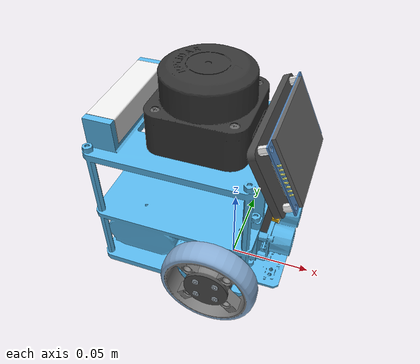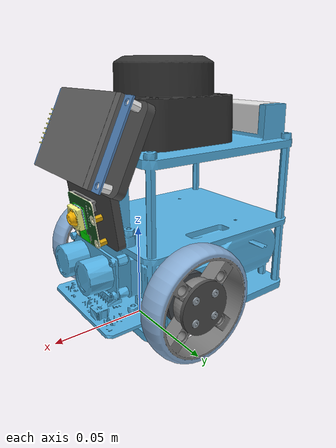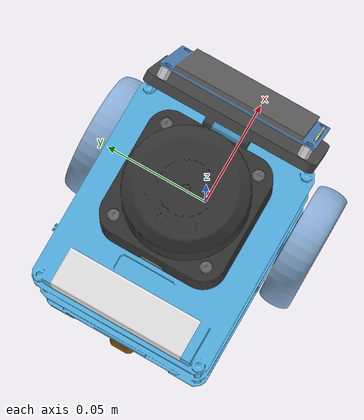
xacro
<?xml version="1.0"?>
<robot xmlns:xacro="http://ros.org/wiki/xacro" name="pinky">
    <xacro:include filename="$(find pinky_description)/urdf/pinky.urdf.xacro"/>

    <xacro:arg name="namespace" default=""/>
    <xacro:arg name="is_sim" default="false"/>
    <xacro:arg name="cam_tilt_deg" default="8"/>
    <xacro:arg name="screen_tilt_deg" default="-25"/>

    <xacro:insert_robot namespace="$(arg namespace)"
                        is_sim="$(arg is_sim)"
                        cam_tilt_deg="$(arg cam_tilt_deg)"
                        screen_tilt_deg="$(arg screen_tilt_deg)"/>
</robot>

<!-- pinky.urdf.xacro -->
<robot xmlns:xacro="http://www.ros.org/wiki/xacro">
    <xacro:macro name="insert_robot" params="namespace is_sim:=false cam_tilt_deg screen_tilt_deg">
        <xacro:include filename="$(find pinky_description)/urdf/common/insert_inertia.urdf.xacro"/>

        <link name="base_footprint"/>
        <link name="base_link">
            <visual>
                <origin xyz="0 0 0" rpy="0 0 0"/>
                <geometry>
                    <mesh filename="package://pinky_description/meshes/visual/base_link.dae" scale="1 1 1"/>
                </geometry>
            </visual>
            <collision>
                <origin xyz="0 0 0" rpy="0 0 0"/>
                <geometry>
                    <mesh filename="package://pinky_description/meshes/collision/base_link.stl" scale="1 1 1"/>
                </geometry>
            </collision>
            <inertial>
                <origin xyz="-0.025 0 0.025" rpy="0 0 0"/>
                <mass value="0.8"/>
                <xacro:box_inertia m="0.8" x="0.09" y="0.08" z="0.086"/>
            </inertial>
        </link>

        <joint name="base_link_fixed_joint" type="fixed">
            <parent link="base_footprint"/>
            <child link="base_link"/>
            <origin xyz="0 0 0.028" rpy="0 0 0"/>
        </joint>

        <xacro:macro name="insert_wheel" params="side dir">
            <link name="${side}_wheel">
                <visual>
                    <origin xyz="0 0 0" rpy="0 0 ${dir*pi/2}"/>
                    <geometry>
                        <mesh filename="package://pinky_description/meshes/visual/main_wheel.dae" scale="1 1 1"/>
                    </geometry>
                </visual>
                <collision>
                    <origin xyz="0 ${dir*0.008} 0" rpy="0 0 0"/>
                    <geometry>
                        <sphere radius="0.028"/>
                    </geometry>
                </collision>
                <inertial>
                    <origin xyz="0 ${dir*0.008} 0" rpy="0 0 0"/>
                    <mass value="0.2"/>
                    <xacro:sphere_inertia m="0.2" r="0.028"/>
                </inertial>
            </link>

            <joint name="${namespace}${side}_wheel_joint" type="continuous">
                <parent link="base_link"/>
                <child link="${side}_wheel"/>
                <axis xyz="0 1 0"/>
                <origin xyz="0 ${dir*0.04055} 0" rpy="0 0 0"/>
            </joint>
        </xacro:macro>

        <xacro:insert_wheel side="l" dir="1"/>
        <xacro:insert_wheel side="r" dir="-1"/>

        <link name="caster_mount_link">
            <visual>
                <origin xyz="0 0 0" rpy="0 0 0"/>
                <geometry>
                    <mesh filename="package://pinky_description/meshes/visual/caster_mount.dae" scale="1 1 1"/>
                </geometry>
            </visual>
            <collision>
                <origin xyz="0 0 0" rpy="0 0 0"/>
                <geometry>
                    <mesh filename="package://pinky_description/meshes/collision/caster_mount.stl" scale="1 1 1"/>
                </geometry>
            </collision>
            <inertial>
                <origin xyz="0 0 -0.0015" rpy="0 0 0"/>
                <mass value="0.1"/>
                <xacro:box_inertia m="0.1" x="0.028" y="0.027" z="0.0035"/>
            </inertial>
        </link>

        <joint name="${namespace}caster_mount_fixed_joint" type="fixed">
            <parent link="base_link"/>
            <child link="caster_mount_link"/>
            <origin xyz="-0.0585 0 -0.007" rpy="0 0 0"/>
        </joint>

        <link name="caster_roate_link">
            <visual>
                <origin xyz="0 0 0" rpy="0 0 0"/>
                <geometry>
                    <mesh filename="package://pinky_description/meshes/visual/caster_rotate.dae" scale="1 1 1"/>
                </geometry>
            </visual>
            <collision>
                <origin xyz="0 0 0" rpy="0 0 0"/>
                <geometry>
                    <mesh filename="package://pinky_description/meshes/collision/caster_rotate.stl" scale="1 1 1"/>
                </geometry>
            </collision>
            <inertial>
                <origin xyz="-0.010 0 -0.006" rpy="0 0 0"/>
                <mass value="0.05"/>
                <xacro:box_inertia m="0.05" x="0.018" y="0.016" z="0.010"/>
            </inertial>
        </link>

        <joint name="${namespace}caster_rotate_joint" type="continuous">
            <parent link="caster_mount_link"/>
            <child link="caster_roate_link"/>
            <axis xyz="0 0 1"/>
            <origin xyz="0 0 -0.0035" rpy="0 0 0"/>
        </joint>

        <link name="caster_wheel">
            <visual>
                <origin xyz="0 0 0" rpy="0 0 0"/>
                <geometry>
                    <mesh filename="package://pinky_description/meshes/visual/caster_wheel.dae" scale="1 1 1"/>
                </geometry>
            </visual>
            <collision>
                <origin xyz="0 0 0" rpy="0 0 0"/>
                <geometry>
                    <sphere radius="0.0065"/>
                </geometry>
            </collision>
            <inertial>
                <origin xyz="0 0 0" rpy="0 0 0"/>
                <mass value="0.05"/>
                <xacro:sphere_inertia m="0.05" r="0.0065"/>
            </inertial>
        </link>

        <joint name="${namespace}caster_wheel_joint" type="continuous">
            <parent link="caster_roate_link"/>
            <child link="caster_wheel"/>
            <axis xyz="0 1 0"/>
            <origin xyz="-0.011 0 -0.011" rpy="0 0 0"/>
        </joint>

        <link name="robot_lamp">
            <visual>
                <origin xyz="0 0 0" rpy="0 0 0"/>
                <geometry>
                    <mesh filename="package://pinky_description/meshes/visual/robot_lamp.dae" scale="1 1 1"/>
                </geometry>
            </visual>
            <collision>
                <origin xyz="0 0 0" rpy="0 0 0"/>
                <geometry>
                    <mesh filename="package://pinky_description/meshes/collision/robot_lamp.stl" scale="1 1 1"/>
                </geometry>
            </collision>
            <inertial>
                <origin xyz="-0.06425 0 0.078" rpy="0 0 0"/>
                <mass value="0.01"/>
                <xacro:box_inertia m="0.01" x="0.0165" y="0.058" z="0.018"/>
            </inertial>
        </link>

        <joint name="${namespace}robot_lamp_mount_fixed_joint" type="fixed">
            <parent link="base_link"/>
            <child link="robot_lamp"/>
            <origin xyz="0 0 0" rpy="0 0 0"/>
        </joint>

        <link name="rplidar_mount">
            <visual>
                <origin xyz="0 0 0" rpy="0 0 0"/>
                <geometry>
                    <mesh filename="package://pinky_description/meshes/visual/rplidar_c1.dae" scale="1 1 1"/>
                </geometry>
            </visual>
            <collision>
                <origin xyz="0 0 0" rpy="0 0 0"/>
                <geometry>
                    <mesh filename="package://pinky_description/meshes/collision/rplidar_c1.stl" scale="1 1 1"/>
                </geometry>
            </collision>
            <inertial>
                <origin xyz="0 0 0.021" rpy="0 0 0"/>
                <mass value="0.11"/>
                <xacro:cylinder_inertia m="0.11" r="0.025" h="0.042"/>
            </inertial>
        </link>

        <joint name="${namespace}rplidar_mount_fixed_joint" type="fixed">
            <parent link="base_link"/>
            <child link="rplidar_mount"/>
            <origin xyz="-0.017 0 0.067" rpy="0 0 0"/>
        </joint>

        <link name="rplidar_link"/>
        <joint name="${namespace}rplidar_link_fixed_joint" type="fixed">
            <parent link="rplidar_mount"/>
            <child link="rplidar_link"/>
            <origin xyz="0 0 0.030" rpy="0 0 ${pi}"/>
        </joint>

        <link name="front_camera_mount">
            <visual>
                <origin xyz="0 0 0" rpy="0 0 0"/>
                <geometry>
                    <mesh filename="package://pinky_description/meshes/visual/camera_assy.dae" scale="1 1 1"/>
                </geometry>
            </visual>
            <collision>
                <origin xyz="0 0 0" rpy="0 0 0"/>
                <geometry>
                    <mesh filename="package://pinky_description/meshes/collision/camera_assy.stl" scale="1 1 1"/>
                </geometry>
            </collision>
            <inertial>
                <origin xyz="0.01 0 -0.0121" rpy="0 0 0"/>
                <mass value="0.01"/>
                <xacro:box_inertia m="0.01" x="0.0165" y="0.045" z="0.030"/>
            </inertial>
        </link>

        <joint name="${namespace}front_camera_mount_fixed_joint" type="fixed">
            <parent link="base_link"/>
            <child link="front_camera_mount"/>
            <origin xyz="0.020 0 0.0495" rpy="0 ${cam_tilt_deg/180*pi} 0"/>
        </joint>

        <link name="front_camera_link"/>
        <joint name="${namespace}front_camera_fixed_joint" type="fixed">
            <parent link="front_camera_mount"/>
            <child link="front_camera_link"/>
            <origin xyz="0.015 0 -0.0121" rpy="0 0 0"/>
        </joint>

        <link name="screen_mount">
            <visual>
                <origin xyz="0 0 0" rpy="0 0 0"/>
                <geometry>
                    <mesh filename="package://pinky_description/meshes/visual/screen_assy.dae" scale="1 1 1"/>
                </geometry>
            </visual>
            <collision>
                <origin xyz="0 0 0" rpy="0 0 0"/>
                <geometry>
                    <mesh filename="package://pinky_description/meshes/collision/screen_assy.stl" scale="1 1 1"/>
                </geometry>
            </collision>
            <inertial>
                <origin xyz="0.01 0 -0.004" rpy="0 0 0"/>
                <mass value="0.01"/>
                <xacro:box_inertia m="0.01" x="0.012" y="0.071" z="0.041"/>
            </inertial>
        </link>

        <joint name="${namespace}screen_mount_fixed_joint" type="fixed">
            <parent link="base_link"/>
            <child link="screen_mount"/>
            <origin xyz="0.0165 0 0.071" rpy="0 ${screen_tilt_deg/180*pi} 0"/>
        </joint>

        <link name="ultrasonic_link"/>
        <joint name="${namespace}ultrasonic_fixed_joint" type="fixed">
            <parent link="base_link"/>
            <child link="ultrasonic_link"/>
            <origin xyz="0.0267 0 0.009" rpy="0 0 0"/>
        </joint>

        <link name="ir_mid_link"/>
        <joint name="${namespace}ir_mid_fixed_joint" type="fixed">
            <parent link="base_link"/>
            <child link="ir_mid_link"/>
            <origin xyz="0.0295 0 -0.015" rpy="0 0 0"/>
        </joint>

        <link name="ir_l_link"/>
        <joint name="${namespace}ir_l_fixed_joint" type="fixed">
            <parent link="base_link"/>
            <child link="ir_l_link"/>
            <origin xyz="0.0295 0.02 -0.015" rpy="0 0 0"/>
        </joint>

        <link name="ir_r_link"/>
        <joint name="${namespace}ir_r_fixed_joint" type="fixed">
            <parent link="base_link"/>
            <child link="ir_r_link"/>
            <origin xyz="0.0295 -0.02 -0.015" rpy="0 0 0"/>
        </joint>

        <link name="imu_link"/>
        <joint name="${namespace}imu_fixed_joint" type="fixed">
            <parent link="base_link"/>
            <child link="imu_link"/>
            <origin xyz="-0.044 0 0.0525" rpy="0 0 0"/>
        </joint>

        <xacro:if value="${is_sim}">
            <xacro:include filename="$(find pinky_description)/urdf/pinky_gz.urdf.xacro"/>
            <xacro:insert_gz_sim namespace="${namespace}"/>
        </xacro:if>
    </xacro:macro>
</robot>
